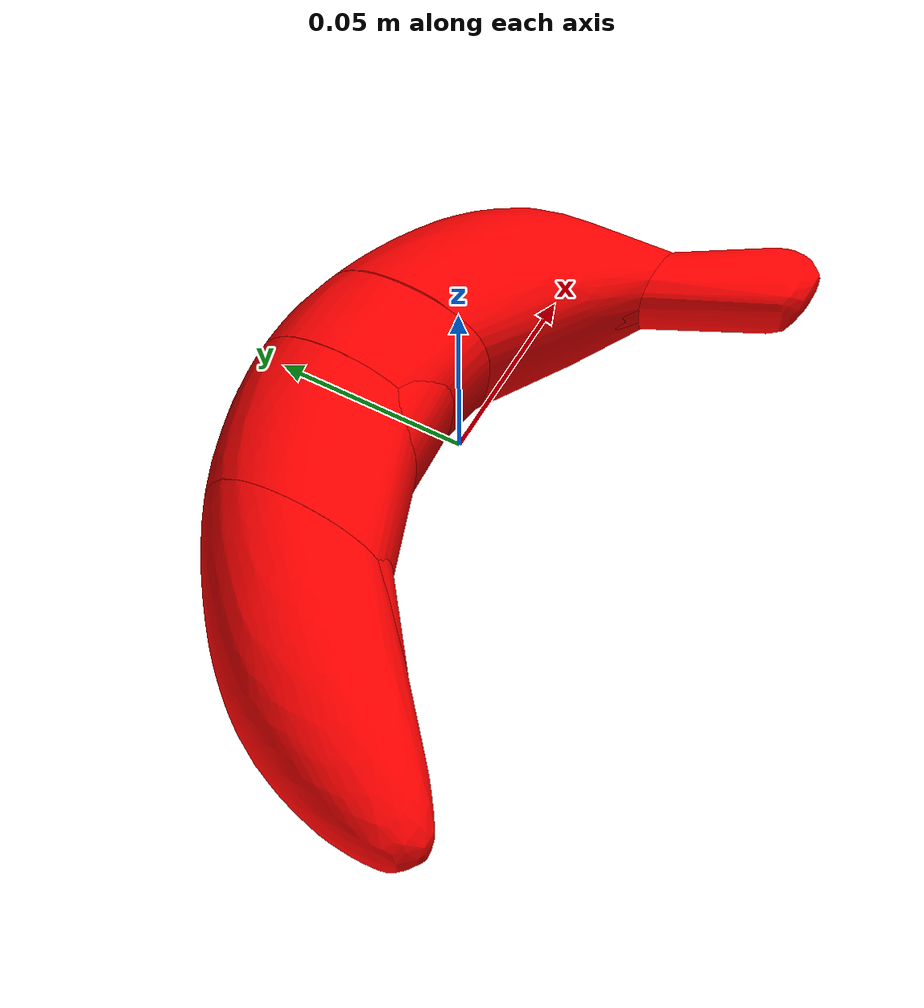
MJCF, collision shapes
<?xml version="1.0" ?>
<mujoco model="green_banana">
	<compiler meshdir="green_banana/meshes" texturedir="green_banana/textures" angle="radian" autolimits="true" balanceinertia="true" boundmass="0.000001" boundinertia="0.000001"/>
	<default>
		<default class="visual">
			<geom contype="0" conaffinity="0"/>
		</default>
		<default class="collision">
			<geom rgba="1.0 0.0 0.0 0.0"/>
		</default>
	</default>
	<asset>
		<mesh name="GreenBananaExocarp" file="obj/GreenBananaExocarp.obj" scale="1.0 1.0 1.0"/>
		<mesh name="GreenBananaExocarp_001" file="stl/GreenBananaExocarp_001.stl" scale="1.0 1.0 1.0"/>
		<mesh name="GreenBananaExocarp_002" file="stl/GreenBananaExocarp_002.stl" scale="1.0 1.0 1.0"/>
		<mesh name="GreenBananaExocarp_003" file="stl/GreenBananaExocarp_003.stl" scale="1.0 1.0 1.0"/>
		<mesh name="GreenBananaExocarp_004" file="stl/GreenBananaExocarp_004.stl" scale="1.0 1.0 1.0"/>
		<mesh name="GreenBananaExocarp_005" file="stl/GreenBananaExocarp_005.stl" scale="1.0 1.0 1.0"/>
		<mesh name="GreenBananaEndocarp" file="obj/GreenBananaEndocarp.obj" scale="1.0 1.0 1.0"/>
		<mesh name="GreenBananaEndocarp_001" file="stl/GreenBananaEndocarp_001.stl" scale="1.0 1.0 1.0"/>
		<mesh name="GreenBananaEndocarp_002" file="stl/GreenBananaEndocarp_002.stl" scale="1.0 1.0 1.0"/>
		<mesh name="GreenBananaEndocarp_003" file="stl/GreenBananaEndocarp_003.stl" scale="1.0 1.0 1.0"/>
		<mesh name="GreenBananaFlesh" file="obj/GreenBananaFlesh.obj" scale="1.0 1.0 1.0"/>
		<mesh name="GreenBananaFlesh_001" file="stl/GreenBananaFlesh_001.stl" scale="1.0 1.0 1.0"/>
		<mesh name="GreenBananaFlesh_002" file="stl/GreenBananaFlesh_002.stl" scale="1.0 1.0 1.0"/>
		<mesh name="GreenBananaFlesh_003" file="stl/GreenBananaFlesh_003.stl" scale="1.0 1.0 1.0"/>
		<mesh name="GreenBananaFlesh_004" file="stl/GreenBananaFlesh_004.stl" scale="1.0 1.0 1.0"/>
		<material name="M_GreenBananaExocarp" texture="T_GreenBananaExocarp"/>
		<material name="M_GreenBananaEndocarp" texture="T_GreenBananaEndocarp"/>
		<material name="M_GreenBananaFlesh" texture="T_GreenBananaFlesh"/>
		<texture name="T_GreenBananaExocarp" type="2d" file="T_GreenBananaExocarp.png"/>
		<texture name="T_GreenBananaEndocarp" type="2d" file="T_GreenBananaEndocarp.png"/>
		<texture name="T_GreenBananaFlesh" type="2d" file="T_GreenBananaFlesh.png"/>
	</asset>
	<worldbody>
		<body name="green_banana" pos="0.0 0.0 0.0" quat="1.0 0.0 0.0 0.0">
			<body name="green_banana_exocarp" pos="0.0 0.0 0.0" quat="1.0 0.0 0.0 0.0">
				<inertial mass="0.01469142735004425" pos="-0.006618168205022812 0.009748806245625019 -0.0014161976287141442" quat="0.9990789294242859 0.04028986394405365 0.004986665677279234 -0.013897595927119255" diaginertia="1.326361143583199e-05 4.837357118958607e-05 5.629465886158869e-05"/>
				<geom name="GreenBananaExocarp" type="mesh" pos="0.0 0.0 0.0" quat="1.0 0.0 0.0 0.0" mesh="GreenBananaExocarp" material="M_GreenBananaExocarp" class="visual"/>
				<geom name="GreenBananaExocarp_001" type="mesh" pos="0.0 0.0 0.0" quat="1.0 0.0 0.0 0.0" mesh="GreenBananaExocarp_001" class="collision"/>
				<geom name="GreenBananaExocarp_002" type="mesh" pos="0.0 0.0 0.0" quat="1.0 0.0 0.0 0.0" mesh="GreenBananaExocarp_002" class="collision"/>
				<geom name="GreenBananaExocarp_003" type="mesh" pos="0.0 0.0 0.0" quat="1.0 0.0 0.0 0.0" mesh="GreenBananaExocarp_003" class="collision"/>
				<geom name="GreenBananaExocarp_004" type="mesh" pos="0.0 0.0 0.0" quat="1.0 0.0 0.0 0.0" mesh="GreenBananaExocarp_004" class="collision"/>
				<geom name="GreenBananaExocarp_005" type="mesh" pos="0.0 0.0 0.0" quat="1.0 0.0 0.0 0.0" mesh="GreenBananaExocarp_005" class="collision"/>
			</body>
			<body name="green_banana_flesh" pos="0.0 0.0 0.0" quat="1.0 0.0 0.0 0.0">
				<inertial mass="0.16765253245830536" pos="-0.011790089309215546 0.016100971028208733 -0.000510037993080914" quat="0.99969083070755 0.01704469695687294 -0.002094842726364732 0.01798039674758911" diaginertia="0.00010760426084743813 0.000394125614548102 0.0004735825059469789"/>
				<geom name="GreenBananaFlesh" type="mesh" pos="0.0 0.0 0.0" quat="1.0 0.0 0.0 0.0" mesh="GreenBananaFlesh" material="M_GreenBananaFlesh" class="visual"/>
				<geom name="GreenBananaFlesh_001" type="mesh" pos="0.0 0.0 0.0" quat="1.0 0.0 0.0 0.0" mesh="GreenBananaFlesh_001" class="collision"/>
				<geom name="GreenBananaFlesh_002" type="mesh" pos="0.0 0.0 0.0" quat="1.0 0.0 0.0 0.0" mesh="GreenBananaFlesh_002" class="collision"/>
				<geom name="GreenBananaFlesh_003" type="mesh" pos="0.0 0.0 0.0" quat="1.0 0.0 0.0 0.0" mesh="GreenBananaFlesh_003" class="collision"/>
				<geom name="GreenBananaFlesh_004" type="mesh" pos="0.0 0.0 0.0" quat="1.0 0.0 0.0 0.0" mesh="GreenBananaFlesh_004" class="collision"/>
			</body>
			<body name="green_banana_endocarp" pos="0.0 0.0 0.0" quat="1.0 0.0 0.0 0.0">
				<inertial mass="0.003866086946800351" pos="-0.012336766347289085 0.013098365627229214 -0.0009010485373437405" quat="0.9992004036903381 0.023779312148690224 -0.002455900888890028 0.0320470854640007" diaginertia="3.1249355743057095e-06 1.1443039511505049e-05 1.3228829629952088e-05"/>
				<geom name="GreenBananaEndocarp" type="mesh" pos="0.0 0.0 0.0" quat="1.0 0.0 0.0 0.0" mesh="GreenBananaEndocarp" material="M_GreenBananaEndocarp" class="visual"/>
				<geom name="GreenBananaEndocarp_001" type="mesh" pos="0.0 0.0 0.0" quat="1.0 0.0 0.0 0.0" mesh="GreenBananaEndocarp_001" class="collision"/>
				<geom name="GreenBananaEndocarp_002" type="mesh" pos="0.0 0.0 0.0" quat="1.0 0.0 0.0 0.0" mesh="GreenBananaEndocarp_002" class="collision"/>
				<geom name="GreenBananaEndocarp_003" type="mesh" pos="0.0 0.0 0.0" quat="1.0 0.0 0.0 0.0" mesh="GreenBananaEndocarp_003" class="collision"/>
			</body>
		</body>
	</worldbody>
	<equality/>
</mujoco>
